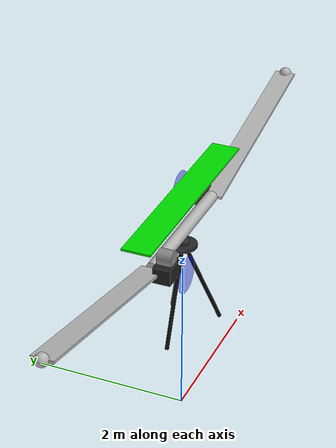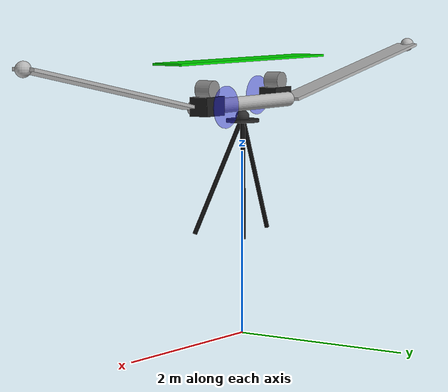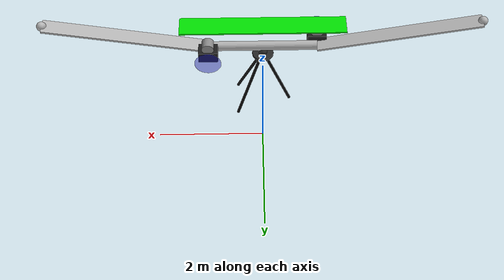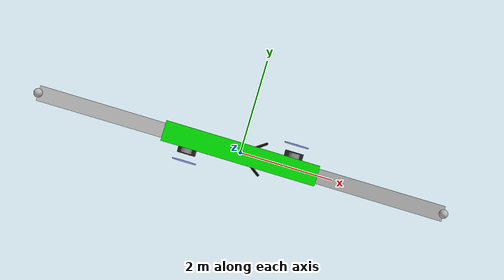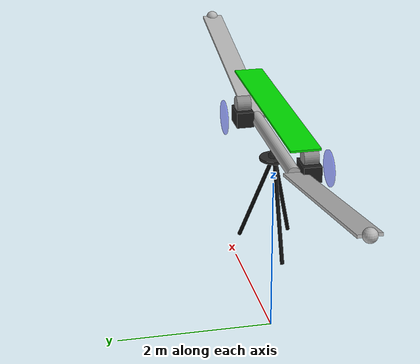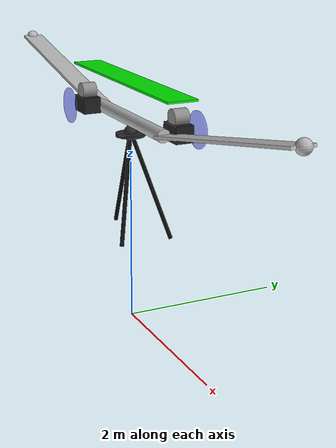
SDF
<?xml version="1.0"?>
<sdf version="1.6">
  <model name="teeter_rotor">
    <!-- DOCUMENTATION HEADER                                                    -->
    <pose>0 0 1.0 0 0 0</pose>
    <static>false</static>

    <!-- base_link                                                              -->
    <link name="base_link">
      <pose>0 0 0 0 0 0</pose>
      <inertial>
        <mass>11.05</mass>
        <inertia>
          <ixx>8.0</ixx>
          <iyy>8.0</iyy>
          <izz>12.0</izz>
          <ixy>0.0</ixy>
          <ixz>0.0</ixz>
          <iyz>0.0</iyz>
        </inertia>
      </inertial>

      <!-- Tripod mast between base_link and rotor hub              -->
      <!-- This is fixed to base_link and visually supports rotor   -->
      <!-- area. It does not physically attach to spinning rotor_link. -->
      <visual name="tripod_mast_front_left_visual">
        <pose>0.2250 0.1600 0.7500 0.000000 0.413028 -2.523448</pose>
        <geometry>
          <cylinder>
            <radius>0.0250</radius>
            <length>1.3757</length>
          </cylinder>
        </geometry>
        <material>
          <ambient>0.05 0.05 0.05 1</ambient>
          <diffuse>0.05 0.05 0.05 1</diffuse>
        </material>
      </visual>
      <visual name="tripod_mast_front_right_visual">
        <pose>0.2250 -0.1600 0.7500 0.000000 0.413028 2.523448</pose>
        <geometry>
          <cylinder>
            <radius>0.0250</radius>
            <length>1.3757</length>
          </cylinder>
        </geometry>
        <material>
          <ambient>0.05 0.05 0.05 1</ambient>
          <diffuse>0.05 0.05 0.05 1</diffuse>
        </material>
      </visual>
      <visual name="tripod_mast_rear_visual">
        <pose>-0.2400 0.0000 0.7500 0.000000 0.363979 0.000000</pose>
        <geometry>
          <cylinder>
            <radius>0.0250</radius>
            <length>1.3483</length>
          </cylinder>
        </geometry>
        <material>
          <ambient>0.05 0.05 0.05 1</ambient>
          <diffuse>0.05 0.05 0.05 1</diffuse>
        </material>
      </visual>
      <visual name="tripod_mast_top_joint_visual">
        <pose>0.0000 0.0000 1.3800 0 0 0</pose>
        <geometry>
          <sphere>
            <radius>0.075</radius>
          </sphere>
        </geometry>
        <material>
          <ambient>0.18 0.18 0.18 1</ambient>
          <diffuse>0.18 0.18 0.18 1</diffuse>
        </material>
      </visual>

      <visual name="tripod_mast_top_plate_visual">
        <pose>0 0 1.34 0 0 0</pose>
        <geometry>
          <cylinder>
            <radius>0.18</radius>
            <length>0.035</length>
          </cylinder>
        </geometry>
        <material>
          <ambient>0.16 0.16 0.16 1</ambient>
          <diffuse>0.16 0.16 0.16 1</diffuse>
        </material>
      </visual>

    </link>

    <!-- rotor_link                                                              -->
    <link name="rotor_link">
      <pose>0 0 1.524 0 0 0</pose>
      <inertial>
        <mass>8.0</mass>
        <inertia>
          <ixx>18.0</ixx>
          <iyy>18.0</iyy>
          <izz>35.0</izz>
          <ixy>0.0</ixy>
          <ixz>0.0</ixz>
          <iyz>0.0</iyz>
        </inertia>
      </inertial>

      <!-- Two-blade physical/simple rotor visual and collision. -->
      <collision name="blade_1_collision">
        <pose>2.2608 0 0.2617 0 -0.191986 0</pose>
        <geometry>
          <box>
            <size>2.7432 0.2667 0.035</size>
          </box>
        </geometry>
      </collision>
      <visual name="blade_1_visual">
        <pose>2.2608 0 0.2617 0 -0.191986 0</pose>
        <geometry>
          <box>
            <size>2.7432 0.2667 0.035</size>
          </box>
        </geometry>
      </visual>

      <collision name="blade_2_collision">
        <pose>-2.2608 0 0.2617 0 -0.191986 3.14159265359</pose>
        <geometry>
          <box>
            <size>2.7432 0.2667 0.035</size>
          </box>
        </geometry>
      </collision>
      <visual name="blade_2_visual">
        <pose>-2.2608 0 0.2617 0 -0.191986 3.14159265359</pose>
        <geometry>
          <box>
            <size>2.7432 0.2667 0.035</size>
          </box>
        </geometry>
      </visual>

      <!-- Hub / teeter beam placeholder. -->
      <collision name="hub_beam_collision">
        <pose>0 0 0 0 1.57079632679 0</pose>
        <geometry>
          <cylinder>
            <radius>0.08</radius>
            <length>1.8288</length>
          </cylinder>
        </geometry>
      </collision>
      <visual name="hub_beam_visual">
        <pose>0 0 0 0 1.57079632679 0</pose>
        <geometry>
          <cylinder>
            <radius>0.08</radius>
            <length>1.8288</length>
          </cylinder>
        </geometry>
      </visual>

      <visual name="tip_weight_1_visual">
        <pose>3.6072 0 0.5234 0 0 0</pose>
        <geometry>
          <sphere>
            <radius>0.08</radius>
          </sphere>
        </geometry>
      </visual>
      <visual name="tip_weight_2_visual">
        <pose>-3.6072 0 0.5234 0 0 0</pose>
        <geometry>
          <sphere>
            <radius>0.08</radius>
          </sphere>
        </geometry>
      </visual>

      <visual name="gp76_engine_1_body_visual">
        <pose>0.9144 0.18 0.03 0 0 0</pose>
        <geometry>
          <box>
            <size>0.32 0.22 0.20</size>
          </box>
        </geometry>
        <material>
          <ambient>0.12 0.12 0.12 1</ambient>
          <diffuse>0.12 0.12 0.12 1</diffuse>
        </material>
      </visual>
      <visual name="gp76_engine_1_cylinder_visual">
        <pose>0.9144 0.18 0.20 1.57079632679 0 0</pose>
        <geometry>
          <cylinder>
            <radius>0.10</radius>
            <length>0.18</length>
          </cylinder>
        </geometry>
        <material>
          <ambient>0.55 0.55 0.55 1</ambient>
          <diffuse>0.55 0.55 0.55 1</diffuse>
        </material>
      </visual>
      <visual name="gp76_engine_1_prop_disc_visual">
        <pose>0.9144 0.42 0.03 1.57079632679 0 0</pose>
        <geometry>
          <cylinder>
            <radius>0.22</radius>
            <length>0.015</length>
          </cylinder>
        </geometry>
        <material>
          <ambient>0.1 0.1 0.9 0.45</ambient>
          <diffuse>0.1 0.1 0.9 0.45</diffuse>
        </material>
      </visual>

      <visual name="gp76_engine_2_body_visual">
        <pose>-0.9144 -0.18 0.03 0 0 3.14159265359</pose>
        <geometry>
          <box>
            <size>0.32 0.22 0.20</size>
          </box>
        </geometry>
        <material>
          <ambient>0.12 0.12 0.12 1</ambient>
          <diffuse>0.12 0.12 0.12 1</diffuse>
        </material>
      </visual>
      <visual name="gp76_engine_2_cylinder_visual">
        <pose>-0.9144 -0.18 0.20 1.57079632679 0 0</pose>
        <geometry>
          <cylinder>
            <radius>0.10</radius>
            <length>0.18</length>
          </cylinder>
        </geometry>
        <material>
          <ambient>0.55 0.55 0.55 1</ambient>
          <diffuse>0.55 0.55 0.55 1</diffuse>
        </material>
      </visual>
      <visual name="gp76_engine_2_prop_disc_visual">
        <pose>-0.9144 -0.42 0.03 1.57079632679 0 0</pose>
        <geometry>
          <cylinder>
            <radius>0.22</radius>
            <length>0.015</length>
          </cylinder>
        </geometry>
        <material>
          <ambient>0.1 0.1 0.9 0.45</ambient>
          <diffuse>0.1 0.1 0.9 0.45</diffuse>
        </material>
      </visual>
    </link>

    <!-- Visual-only pitch indicators. -->
    <link name="blade_1_pitch_indicator">
      <pose>0 0 2.0 0 0 0</pose>
      <gravity>false</gravity>
      <self_collide>false</self_collide>
      <inertial>
        <mass>0.001</mass>
        <inertia>
          <ixx>0.000001</ixx>
          <iyy>0.000001</iyy>
          <izz>0.000001</izz>
          <ixy>0.0</ixy>
          <ixz>0.0</ixz>
          <iyz>0.0</iyz>
        </inertia>
      </inertial>
      <visual name="blade_1_pitch_indicator_visual">
        <geometry>
          <box>
            <size>2.7432 0.36 0.025</size>
          </box>
        </geometry>
        <material>
          <ambient>0 0.9 0 1</ambient>
          <diffuse>0 0.9 0 1</diffuse>
        </material>
      </visual>
    </link>

    <link name="blade_2_pitch_indicator">
      <pose>0 0 2.0 0 0 0</pose>
      <gravity>false</gravity>
      <self_collide>false</self_collide>
      <inertial>
        <mass>0.001</mass>
        <inertia>
          <ixx>0.000001</ixx>
          <iyy>0.000001</iyy>
          <izz>0.000001</izz>
          <ixy>0.0</ixy>
          <ixz>0.0</ixz>
          <iyz>0.0</iyz>
        </inertia>
      </inertial>
      <visual name="blade_2_pitch_indicator_visual">
        <geometry>
          <box>
            <size>2.7432 0.36 0.025</size>
          </box>
        </geometry>
        <material>
          <ambient>0.9 0 0 1</ambient>
          <diffuse>0.9 0 0 1</diffuse>
        </material>
      </visual>
    </link>

    <joint name="main_rotor_joint" type="revolute">
      <parent>base_link</parent>
      <child>rotor_link</child>
      <pose>0 0 1.524 0 0 0</pose>
      <axis>
        <xyz>0 0 1</xyz>
        <limit>
          <lower>-1e16</lower>
          <upper>1e16</upper>
          <effort>10000</effort>
          <velocity>1000</velocity>
        </limit>
        <dynamics>
          <damping>0.01</damping>
          <friction>0.0</friction>
        </dynamics>
      </axis>
    </joint>

    <plugin name="teeter_rotor_plugin" filename="libteeter_rotor_plugin.so">
      <!-- baseLinkName:
           Name of the non-rotating vehicle body link. -->
      <baseLinkName>base_link</baseLinkName>
      <!-- rotorLinkName:
           Name of the simplified spinning rotor assembly. -->
      <rotorLinkName>rotor_link</rotorLinkName>
      <blade1IndicatorLinkName>blade_1_pitch_indicator</blade1IndicatorLinkName>
      <blade2IndicatorLinkName>blade_2_pitch_indicator</blade2IndicatorLinkName>
      <!-- jointName:
           Revolute joint connecting base_link and rotor_link. -->
      <jointName>main_rotor_joint</jointName>

      <!-- Runtime Gazebo command topics                                       -->
      <!-- enableCommandTopics:
           true  = subscribe to Gazebo topics so commands can be changed live.
           false = use only the SDF values. -->
      <enableCommandTopics>true</enableCommandTopics>

      <commandTopicNamespace>teeter_rotor</commandTopicNamespace>

      <!-- Primary test variables -->
      <!-- targetRpm:
           If useEngineDynamics=false, this directly forces rotor RPM.
           If useEngineDynamics=true, this is only the initial RPM at spawn.
           Unit: rpm. -->
      <targetRpm>0.0</targetRpm>
      <payloadWeightLb>360.0</payloadWeightLb>
      <!-- blade1PitchDeg:
           Pitch command for blade 1 in degrees.
           Design/reference value: 7.27 deg. -->
      <blade1PitchDeg>7.27</blade1PitchDeg>
      <blade2PitchDeg>7.27</blade2PitchDeg>

      <!-- Azimuth-based cyclic pitch                                          -->
      <useCyclicPitch>true</useCyclicPitch>

      <!-- collectiveDeg:
           Mean blade pitch for both blades.
           This replaces fixed blade pitch when useCyclicPitch=true.
           Start with the design/reference value of 7.27 deg. -->
      <collectiveDeg>7.27</collectiveDeg>

      <rollCyclicDeg>0.0</rollCyclicDeg>

      <pitchCyclicDeg>0.0</pitchCyclicDeg>

      <!-- cyclicPhaseOffsetDeg:
           Phase tuning knob.
           Helicopter/rotor systems often need phase correction.
           Start at 0 deg, then tune sign and phase after observing response. -->
      <cyclicPhaseOffsetDeg>0.0</cyclicPhaseOffsetDeg>

      <!-- Engine dynamics -->
      <useEngineDynamics>true</useEngineDynamics>
      <!-- engineThrottle:
           Normalized throttle for both GP-76 engines.
           Range: 0.0 to 1.0.
           1.0 should settle near 220 rpm with current kTorque. -->
      <engineThrottle>0.001</engineThrottle>
      <!-- engineRadiusFt:
           Distance from rotor center to each engine thrust line.
           Given design value: 3 ft.
           This is the torque arm for engine thrust. -->
      <engineRadiusFt>3.0</engineRadiusFt>
      <engineThrustLbEach>54.0</engineThrustLbEach>
      <!-- Step 1/2 tuning: increase rotorInertiaKgm2 for slower spool-up, decrease for faster spool-up. -->
      <rotorInertiaKgm2>35.0</rotorInertiaKgm2>
      <kTorque>0.831</kTorque>

      <!-- Visual-only pitch indicators -->
      <!-- showPitchIndicators:
           Enables green/red visual-only blade pitch plates. -->
      <showPitchIndicators>true</showPitchIndicators>
      <!-- animatePitchIndicators:
           If true, visual pitch indicators oscillate so pitch motion is easy to see.
           This is visual-only and does not change lift calculation. -->
      <animatePitchIndicators>false</animatePitchIndicators>
      <!-- pitchIndicatorAnimationAmplitudeDeg:
           Visual-only pitch animation amplitude in degrees. -->
      <pitchIndicatorAnimationAmplitudeDeg>5.0</pitchIndicatorAnimationAmplitudeDeg>
      <!-- pitchIndicatorAnimationFrequencyHz:
           Visual-only pitch animation frequency in Hz. -->
      <pitchIndicatorAnimationFrequencyHz>0.25</pitchIndicatorAnimationFrequencyHz>
      <!-- pitchIndicatorVerticalOffsetM:
           Raises the pitch indicators above the blades for visibility. -->
      <pitchIndicatorVerticalOffsetM>0.18</pitchIndicatorVerticalOffsetM>

      <!-- Fixed constants -->
      <!-- emptyWeightLb:
           Target empty vehicle weight.
           Given design value: 42 lb.
           Current SDF inertial masses approximate this empty weight. -->
      <emptyWeightLb>42.0</emptyWeightLb>
      <kThrust>3.69</kThrust>
      <!-- maxRpm:
           Maximum rotor RPM.
           Given design value: 220 rpm.
           Engine dynamics clamp rotor speed to this value. -->
      <maxRpm>220.0</maxRpm>

      <!-- Pitch model -->
      <!-- hoverPitchDeg:
           Reference pitch where pitch_factor = 1.0.
           Given design condition: 440 lb at 7.27 deg. -->
      <hoverPitchDeg>7.27</hoverPitchDeg>
      <!-- zeroLiftPitchDeg:
           Simple linear model zero-lift reference pitch.
           Tuning parameter, not exact airfoil zero-lift angle. -->
      <zeroLiftPitchDeg>1.0</zeroLiftPitchDeg>
      <!-- minPitchDeg:
           Lower pitch clamp.
           Given collective range lower bound: 2 deg. -->
      <minPitchDeg>2.0</minPitchDeg>
      <!-- maxPitchDeg:
           Upper pitch clamp.
           Given collective range upper bound: 12 deg. -->
      <maxPitchDeg>12.0</maxPitchDeg>

      <!-- Rotor metadata -->
      <!-- rotorRadiusFt:
           Rotor radius from center to blade tip.
           Given value: 12 ft. -->
      <rotorRadiusFt>12.0</rotorRadiusFt>
      <!-- hubRadiusFt:
           Hub radius / blade start radius.
           Also matches engine radial location in this simplified layout.
           Given value: 3 ft. -->
      <hubRadiusFt>3.0</hubRadiusFt>
      <!-- numBlades:
           Number of large rotor blades. -->
      <numBlades>2</numBlades>
      <!-- bladeChordIn:
           Blade chord.
           Given value: 10.5 inches. -->
      <bladeChordIn>10.5</bladeChordIn>
      <!-- airfoil:
           Airfoil metadata.
           Not used yet in current equivalent lift model.
           Future blade-element model should use this. -->
      <airfoil>NACA23015</airfoil>
      <!-- tipSpeedFps:
           Tip speed at 220 rpm.
           Given value: 276 ft/s. -->
      <tipSpeedFps>276.0</tipSpeedFps>
      <!-- designGrossWeightLb:
           Design gross weight at 7.27 deg collective.
           Given value: 440 lb. -->
      <designGrossWeightLb>440.0</designGrossWeightLb>
      <!-- tipWeightLb:
           Tip weight per blade.
           Given value: 2.53 lb. -->
      <tipWeightLb>2.53</tipWeightLb>
      <!-- bladeSpanwiseDensityLbFt:
           Approximate blade spanwise density.
           Given value: about 0.3 lb/ft. -->
      <bladeSpanwiseDensityLbFt>0.3</bladeSpanwiseDensityLbFt>
      <!-- forwardSpeedMph:
           Design forward speed metadata.
           Not used yet in current force model. -->
      <forwardSpeedMph>20.0</forwardSpeedMph>
      <!-- rotorTwistDeg:
           Blade twist metadata.
           Given value: 6 deg linear twist.
           Future blade-element model should use this. -->
      <rotorTwistDeg>6.0</rotorTwistDeg>
      <!-- rotorPlaneHeightFt:
           Rotor plane height above ground.
           Given value: 5 ft = 1.524 m. -->
      <rotorPlaneHeightFt>5.0</rotorPlaneHeightFt>
      <!-- teeterAngleLimitDeg:
           Teeter hinge range metadata.
           Given value: +/- 15 deg.
           True teeter hinge is not implemented yet. -->
      <teeterAngleLimitDeg>15.0</teeterAngleLimitDeg>
      <preConeAngleDeg>11.0</preConeAngleDeg>
      <!-- gyroPrecessionTorqueFtLb:
           Gyroscopic precession torque metadata.
           Not directly used yet. -->
      <gyroPrecessionTorqueFtLb>262.0</gyroPrecessionTorqueFtLb>
      <!-- torqueRequiredFtLb:
           Rotor torque required at design condition.
           Used to justify kTorque. -->
      <torqueRequiredFtLb>325.0</torqueRequiredFtLb>
      <!-- equivalentShaftHp:
           Equivalent shaft horsepower metadata.
           Given value: 16 hp. -->
      <equivalentShaftHp>16.0</equivalentShaftHp>
      <!-- propulsiveEfficiency:
           Design assumption metadata. -->
      <propulsiveEfficiency>0.85</propulsiveEfficiency>
      <!-- numEngines:
           Number of GP-76 engines. -->
      <numEngines>2</numEngines>
      <!-- engineHpEach:
           GP-76 power metadata.
           Current torque model uses thrust and radius, not HP curve. -->
      <engineHpEach>8.0</engineHpEach>
      <!-- mainBladeSparOdMm:
           Main blade spar outer diameter metadata. -->
      <mainBladeSparOdMm>30.0</mainBladeSparOdMm>
      <!-- mainBladeSparIdMm:
           Main blade spar inner diameter metadata. -->
      <mainBladeSparIdMm>28.0</mainBladeSparIdMm>
    </plugin>

  </model>
</sdf>
